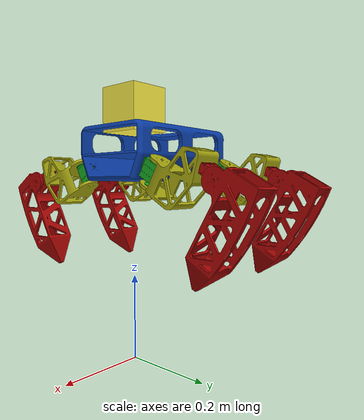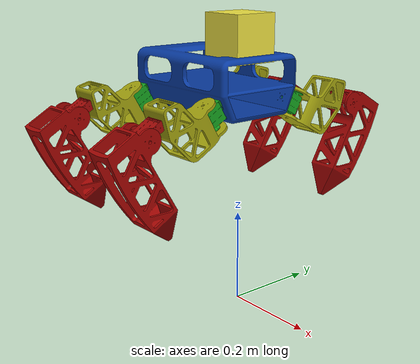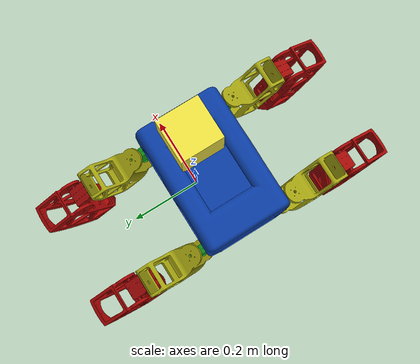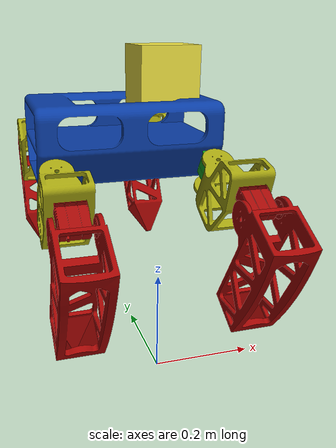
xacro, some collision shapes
<?xml version='1.0'?>

<robot name="insect" xmlns:xacro="http://www.ros.org/wiki/xacro">

<!--xacro parameters-->

<!--macro param-->
<xacro:macro name="default_inertial" params="mass">
   <inertial>
     <mass value="${mass}" />
     <inertia ixx="1.0" ixy="0.0" ixz="0.0" iyy="1.0" iyz="0.0" izz="1.0" />
   </inertial>
 </xacro:macro>
<link name="world"/>

<link name="torso_base">
<collision name="collision">
  <origin xyz="0 0 0" rpy="0 0 0"/>
  <geometry>
    <mesh filename="package://insect_description/meshes/torso_v1.dae"/>
  </geometry>
</collision>
<visual name="visual">
  <origin xyz="0 0 0" rpy="0 0 0"/>
  <geometry>
    <mesh filename="package://insect_description/meshes/torso_v1.dae"/>
  </geometry>
</visual>
<xacro:default_inertial mass="0.8"/>
</link>

 <!--IMU sensor_link-->
  <link name="imu_link">
    <visual>
      <origin rpy="0 0 0" xyz="0 0 0"/>
      <geometry>
        <box size="0.001 0.001 0.001"/> <!--box size="0.001 0.001 0.001"/-->
      </geometry>
    </visual>
    <collision>
      <origin rpy="0 0 0" xyz="0 0 0"/>
      <geometry>
        <box size="0.001 0.001 0.001"/>
      </geometry>
    </collision>
  </link>

  <link name= "l_f_motor">
    <collision name="collision">
      <origin xyz="0 0 0" rpy="0 0 0"/>
        <geometry>
          <mesh filename="package://insect_description/meshes/motor_v1.dae"/>
        </geometry>
      </collision>

      <visual name="visual">
        <origin xyz="0 0 0" rpy="0 0 0"/>
        <geometry>
          <mesh filename="package://insect_description/meshes/motor_v1.dae"/>
        </geometry>
      </visual>
      <xacro:default_inertial mass="0.2"/>
    </link>

    <link name= "r_f_motor">
      <collision name="collision">
        <origin xyz="0 0 0" rpy="0 0 0"/>
          <geometry>
            <mesh filename="package://insect_description/meshes/motor_v1.dae"/>
          </geometry>
        </collision>

        <visual name="visual">
          <origin xyz="0 0 0" rpy="0 0 0"/>
          <geometry>
            <mesh filename="package://insect_description/meshes/motor_v1.dae"/>
          </geometry>
        </visual>
        <xacro:default_inertial mass="0.2"/>
      </link>
      <link name= "l_b_motor">
        <collision name="collision">
          <origin xyz="0 0 0" rpy="0 0 0"/>
            <geometry>
              <mesh filename="package://insect_description/meshes/motor_v1.dae"/>
            </geometry>
          </collision>

          <visual name="visual">
            <origin xyz="0 0 0" rpy="0 0 0"/>
            <geometry>
              <mesh filename="package://insect_description/meshes/motor_v1.dae"/>
            </geometry>
          </visual>
          <xacro:default_inertial mass="0.2"/>
        </link>

        <link name= "r_b_motor">
          <collision name="collision">
            <origin xyz="0 0 0" rpy="0 0 0"/>
              <geometry>
                <mesh filename="package://insect_description/meshes/motor_v1.dae"/>
              </geometry>
            </collision>

            <visual name="visual">
              <origin xyz="0 0 0" rpy="0 0 0"/>
              <geometry>
                <mesh filename="package://insect_description/meshes/motor_v1.dae"/>
              </geometry>
            </visual>
            <xacro:default_inertial mass="0.2"/>
          </link>
          <link name= "l_f_hip">
            <collision name="collision">
              <origin xyz="0 0 0" rpy="0 0 0"/>
                <geometry>
                  <mesh filename="package://insect_description/meshes/hip_v1.dae"/>
                </geometry>
              </collision>

              <visual name="visual">
                <origin xyz="0 0 0" rpy="0 0 0"/>
                <geometry>
                  <mesh filename="package://insect_description/meshes/hip_v1.dae"/>
                </geometry>
              </visual>
              <xacro:default_inertial mass="0.4"/>
            </link>
            <link name= "r_f_hip">
              <collision name="collision">
                <origin xyz="0 0 0" rpy="0 0 0"/>
                  <geometry>
                    <mesh filename="package://insect_description/meshes/hip_v1.dae"/>
                  </geometry>
                </collision>

                <visual name="visual">
                  <origin xyz="0 0 0" rpy="0 0 0"/>
                  <geometry>
                    <mesh filename="package://insect_description/meshes/hip_v1.dae"/>
                  </geometry>
                </visual>
                <xacro:default_inertial mass="0.4"/>
              </link>
              <link name= "l_b_hip">
                <collision name="collision">
                  <origin xyz="0 0 0" rpy="0 0 0"/>
                    <geometry>
                      <mesh filename="package://insect_description/meshes/hip_v1.dae"/>
                    </geometry>
                  </collision>

                  <visual name="visual">
                    <origin xyz="0 0 0" rpy="0 0 0"/>
                    <geometry>
                      <mesh filename="package://insect_description/meshes/hip_v1.dae"/>
                    </geometry>
                  </visual>
                  <xacro:default_inertial mass="0.4"/>
                </link>
                <link name= "r_b_hip">
                  <collision name="collision">
                    <origin xyz="0 0 0" rpy="0 0 0"/>
                      <geometry>
                        <mesh filename="package://insect_description/meshes/hip_v1.dae"/>
                      </geometry>
                    </collision>

                    <visual name="visual">
                      <origin xyz="0 0 0" rpy="0 0 0"/>
                      <geometry>
                        <mesh filename="package://insect_description/meshes/hip_v1.dae"/>
                      </geometry>
                    </visual>
                    <xacro:default_inertial mass="0.4"/>
                  </link>
                  <link name= "l_f_h_motor">
                    <collision name="collision">
                      <origin xyz="0 0 0" rpy="0 0 0"/>
                        <geometry>
                          <mesh filename="package://insect_description/meshes/motor_h_v1.dae"/>
                        </geometry>
                      </collision>

                      <visual name="visual">
                        <origin xyz="0 0 0" rpy="0 0 0"/>
                        <geometry>
                          <mesh filename="package://insect_description/meshes/motor_h_v1.dae"/>
                        </geometry>
                      </visual>
                      <xacro:default_inertial mass="0.2"/>
                    </link>

                    <link name= "r_f_h_motor">
                      <collision name="collision">
                        <origin xyz="0 0 0" rpy="0 0 0"/>
                          <geometry>
                            <mesh filename="package://insect_description/meshes/motor_h_v1.dae"/>
                          </geometry>
                        </collision>

                        <visual name="visual">
                          <origin xyz="0 0 0" rpy="0 0 0"/>
                          <geometry>
                            <mesh filename="package://insect_description/meshes/motor_h_v1.dae"/>
                          </geometry>
                        </visual>
                        <xacro:default_inertial mass="0.2"/>
                      </link>
                      <link name= "l_b_h_motor">
                        <collision name="collision">
                          <origin xyz="0 0 0" rpy="0 0 0"/>
                            <geometry>
                              <mesh filename="package://insect_description/meshes/motor_h_v1.dae"/>
                            </geometry>
                          </collision>

                          <visual name="visual">
                            <origin xyz="0 0 0" rpy="0 0 0"/>
                            <geometry>
                              <mesh filename="package://insect_description/meshes/motor_h_v1.dae"/>
                            </geometry>
                          </visual>
                          <xacro:default_inertial mass="0.2"/>
                        </link>
                        <link name= "r_b_h_motor">
                          <collision name="collision">
                            <origin xyz="0 0 0" rpy="0 0 0"/>
                              <geometry>
                                <mesh filename="package://insect_description/meshes/motor_h_v1.dae"/>
                              </geometry>
                            </collision>

                            <visual name="visual">
                              <origin xyz="0 0 0" rpy="0 0 0"/>
                              <geometry>
                                <mesh filename="package://insect_description/meshes/motor_h_v1.dae"/>
                              </geometry>
                            </visual>
                            <xacro:default_inertial mass="0.2"/>
                          </link>
                          <link name= "l_f_leg">
                            <collision name="collision">
                              <origin xyz="0 0 0" rpy="0 0 0"/>
                                <geometry>
                                  <mesh filename="package://insect_description/meshes/leg_v1.dae"/>
                                </geometry>
                              </collision>

                              <visual name="visual">
                                <origin xyz="0 0 0" rpy="0 0 0"/>
                                <geometry>
                                  <mesh filename="package://insect_description/meshes/leg_v1.dae"/>
                                </geometry>
                              </visual>
                              <xacro:default_inertial mass="0.4"/>
                            </link>
                            <link name= "l_b_leg">
                              <collision name="collision">
                                <origin xyz="0 0 0" rpy="0 0 0"/>
                                  <geometry>
                                    <mesh filename="package://insect_description/meshes/leg_v1.dae"/>
                                  </geometry>
                                </collision>

                                <visual name="visual">
                                  <origin xyz="0 0 0" rpy="0 0 0"/>
                                  <geometry>
                                    <mesh filename="package://insect_description/meshes/leg_v1.dae"/>
                                  </geometry>
                                </visual>
                                <xacro:default_inertial mass="0.4"/>
                              </link>
                              <link name= "r_f_leg">
                                <collision name="collision">
                                  <origin xyz="0 0 0" rpy="0 0 0"/>
                                    <geometry>
                                      <mesh filename="package://insect_description/meshes/leg_v1.dae"/>
                                    </geometry>
                                  </collision>

                                  <visual name="visual">
                                    <origin xyz="0 0 0" rpy="0 0 0"/>
                                    <geometry>
                                      <mesh filename="package://insect_description/meshes/leg_v1.dae"/>
                                    </geometry>
                                  </visual>
                                  <xacro:default_inertial mass="0.4"/>
                                </link>
                                <link name= "r_b_leg">
                                  <collision name="collision">
                                    <origin xyz="0 0 0" rpy="0 0 0"/>
                                      <geometry>
                                        <mesh filename="package://insect_description/meshes/leg_v1.dae"/>
                                      </geometry>
                                    </collision>

                                    <visual name="visual">
                                      <origin xyz="0 0 0" rpy="0 0 0"/>
                                      <geometry>
                                        <mesh filename="package://insect_description/meshes/leg_v1.dae"/>
                                      </geometry>
                                    </visual>
                                    <xacro:default_inertial mass="0.4"/>
                                  </link>
                                  <link name="hokuyo_link">
                                      <collision>
                                          <origin xyz="0 0 0" rpy="0 0 0"/>
                                          <geometry>
                                              <box size="0.1 0.1 0.1"/>
                                          </geometry>
                                      </collision>     <origin xyz="0 0 0" rpy="0 0 0"/>
                                          <geometry>

                                              <mesh filename="package://insect_description/meshes/hokuyo.dae"/>
                                          </geometry>

                                      <visual>
                                          <origin xyz="0 0 0" rpy="0 0 0"/>
                                          <geometry>

                                              <mesh filename="package://insect_description/meshes/hokuyo.dae"/>
                                          </geometry>
                                      </visual>

                                      <inertial>
                                          <mass value="1e-5" />
                                          <origin xyz="0 0 0" rpy="0 0 0"/>
                                          <inertia ixx="1e-6" ixy="0" ixz="0" iyy="1e-6" iyz="0" izz="1e-6" />
                                      </inertial>
                                  </link>

<!-- Joint properties -->
<xacro:property name="joint_lower_limit" value="-${pi/4}"/>
<xacro:property name="joint_upper_limit" value="${pi/4}"/>
<xacro:property name="joint_effort" value="6.0"/>
<xacro:property name="joint_velocity" value="0.524"/>
<xacro:property name="pi" value="3.1415926535897931"/>

<joint name="hokuyo_joint" type="fixed">
    <origin xyz="0 0 0.08" rpy="0 0 0"/>
    <parent link="torso_base"/>
    <child link="hokuyo_link"/>
</joint>

<joint name="world_joint"  type="fixed">
  <origin xyz="0 0 0.50" rpy="0 0 0" />
  <parent link="world"/>
  <child link="torso_base"/>
  <axis xyz="0 0 1" rpy="0 0 0"/>
</joint>
<!--IMU sensor joint-->
<joint name="imu_joint" type="fixed">
  <axis xyz="0.01 0 0.01"/>
  <origin xyz="0 0 0.05"/>
  <parent link="torso_base"/>
  <child link="imu_link"/>
</joint>

<joint name="l_f_motor_joint"  type="fixed">
  <origin xyz="0.048 0.08 -0.08" rpy="0 -${pi/6} -${pi/2}" />
  <parent link="torso_base"/>
  <child link="l_f_motor"/>
  <axis xyz="0 0 1" rpy="0 0 0"/>
</joint>

<joint name="r_f_motor_joint"  type="fixed">
  <origin xyz="0.048 -0.09 -0.08" rpy="0 -${pi/6} ${pi/2}" />
  <parent link="torso_base"/>
  <child link="r_f_motor"/>
  <axis xyz="0 0 1" rpy="0 0 0"/>
</joint>

<joint name="l_b_motor_joint"  type="fixed">
  <origin xyz="-0.2 0.08 -0.08" rpy="0 -${pi/6} -${pi/2}" />
  <parent link="torso_base"/>
  <child link="l_b_motor"/>
  <axis xyz="0 0 1" rpy="0 0 0"/>
</joint>

<joint name="r_b_motor_joint"  type="fixed">
  <origin xyz="-0.2 -0.09 -0.08" rpy="0 -${pi/6} ${pi/2}"/>
  <parent link="torso_base"/>
  <child link="r_b_motor"/>
  <axis xyz="0 0 1" rpy="0 0 0"/>
</joint>

<joint name="l_f_hip_joint"  type="revolute">
  <origin xyz=" -0.04 -0.00005 -0.054" rpy="0 0 0" />
  <parent link="l_f_motor"/>
  <child link="l_f_hip"/>
  <dynamics damping="0.1" friction="0"/>
  <limit lower="${joint_lower_limit}" upper="${joint_upper_limit}" effort="${joint_effort}" velocity="${joint_velocity}"/>
  <safety_controller k_position="100" k_velocity="100" soft_lower_limit="-10.5236" soft_upper_limit="10.5236"/>
  <axis xyz="0 0 1"/>
</joint>

  <joint name="r_f_hip_joint"  type="revolute">
  <origin xyz="-0.04 0.00005 -0.054" rpy="0 0 0" />
  <parent link="r_f_motor"/>
  <child link="r_f_hip"/>
  <dynamics damping="0.1" friction="0"/>
  <limit lower="${joint_lower_limit}" upper="${joint_upper_limit}" effort="${joint_effort}" velocity="${joint_velocity}"/>
  <safety_controller k_position="100" k_velocity="100" soft_lower_limit="-10.5236" soft_upper_limit="10.5236"/>
  <axis xyz="0 0 1" rpy="0 0 0"/>
</joint>

 <joint name="l_b_hip_joint"  type="revolute">
  <origin xyz="-0.04 0.003 -0.054" rpy="0 0 0" />
  <parent link="l_b_motor"/>
  <child link="l_b_hip"/>
  <dynamics damping="0.1" friction="0"/>
  <axis xyz="0 0 1" rpy="0 0 0"/>
  <limit lower="${joint_lower_limit}" upper="${joint_upper_limit}" effort="${joint_effort}" velocity="${joint_velocity}"/>
  <safety_controller k_position="100" k_velocity="100" soft_lower_limit="-10.5236" soft_upper_limit="10.5236"/>
</joint>

 <joint name="r_b_hip_joint"  type="revolute">
  <origin xyz="-0.04 0.003 -0.054" rpy="0 0 0" />
  <parent link="r_b_motor"/>
  <child link="r_b_hip"/>
  <dynamics damping="0.1" friction="0"/>
  <limit lower="${joint_lower_limit}" upper="${joint_upper_limit}" effort="${joint_effort}" velocity="${joint_velocity}"/>
  <safety_controller k_position="100" k_velocity="100" soft_lower_limit="-10.5236" soft_upper_limit="10.5236"/>
  <axis xyz="0 0 1" rpy="0 0 0"/>
</joint>

<joint name="l_f_h_motor_joint" type="fixed">
  <origin xyz="-0.105 -0.003 0.153" rpy="0 0 ${pi}" />
  <parent link="l_f_hip"/>
  <child link="l_f_h_motor"/>
  <axis xyz="0 0 1" rpy="0 0 0"/>
</joint>

<joint name="r_f_h_motor_joint"  type="fixed">
  <origin xyz="-0.105 -0.003 0.153" rpy="0 0 -${pi}"/>
  <parent link="r_f_hip"/>
  <child link="r_f_h_motor"/>
  <axis xyz="0 0 1" rpy="0 0 0"/>
</joint>

<joint name="l_b_h_motor_joint"  type="fixed">
  <origin xyz="-0.105 0.003 0.153" rpy="0 0 ${pi}" />
  <parent link="l_b_hip"/>
  <child link="l_b_h_motor"/>
  <axis xyz="0 0 1" rpy="0 0 0"/>
</joint>

<joint name="r_b_h_motor_joint"  type="fixed">
  <origin xyz="-0.105 -0.003 0.153" rpy="0 0 ${pi}" />
  <parent link="r_b_hip"/>
  <child link="r_b_h_motor"/>
  <axis xyz="0 0 1" rpy="0 0 0"/>
</joint>

<joint name="l_f_leg_joint"  type="revolute">
  <origin xyz="0.075 -0.0002 -0.077" rpy="0 0 ${pi}" />
  <parent link="l_f_h_motor"/>
  <child link="l_f_leg"/>
  <dynamics damping="0.1" friction="0"/>
  <limit lower="${joint_lower_limit}" upper="${joint_upper_limit}" effort="${joint_effort}" velocity="${joint_velocity}"/>
  <safety_controller k_position="100" k_velocity="100" soft_lower_limit="-10.5236" soft_upper_limit="10.5236"/>
  <axis xyz="0 1 0" rpy="0 0 0"/>
</joint>

<joint name="l_b_leg_joint"  type="revolute">
  <origin xyz="0.075 0.0002 -0.077" rpy="0 0 ${pi}" />
  <parent link="l_b_h_motor"/>
  <child link="l_b_leg"/>
  <dynamics damping="0.1" friction="0"/>
  <limit lower="${joint_lower_limit}" upper="${joint_upper_limit}" effort="${joint_effort}" velocity="${joint_velocity}"/>
  <safety_controller k_position="100" k_velocity="100" soft_lower_limit="-10.5236" soft_upper_limit="10.5236"/>
  <axis xyz="0 1 0" rpy="0 0 0"/>
</joint>

<joint name="r_f_leg_joint"  type="revolute">
  <origin xyz="0.075 -0.0002 -0.077" rpy="0 0 ${pi}" />
  <parent link="r_f_h_motor"/>
  <child link="r_f_leg"/>
  <dynamics damping="0.1" friction="0"/>
  <limit lower="${joint_lower_limit}" upper="${joint_upper_limit}" effort="${joint_effort}" velocity="${joint_velocity}"/>
  <safety_controller k_position="100" k_velocity="100" soft_lower_limit="-10.5236" soft_upper_limit="10.5236"/>
  <axis xyz="0 1 0" rpy="0 0 0"/>
</joint>

<joint name="r_b_leg_joint"  type="revolute">
  <origin xyz="0.075 0.0002 -0.077" rpy="0 0 ${pi}" />
  <parent link="r_b_h_motor"/>
  <child link="r_b_leg"/>
  <dynamics damping="0.1" friction="0"/>
  <limit lower="${joint_lower_limit}" upper="${joint_upper_limit}" effort="${joint_effort}" velocity="${joint_velocity}"/>
  <safety_controller k_position="100" k_velocity="100" soft_lower_limit="-10.5236" soft_upper_limit="10.5236"/>
  <axis xyz="0 1 0" rpy="0 0 0"/>
</joint>

<transmission name="l_f_motor_transmission">
  <type>transmission_interface/SimpleTransmission</type>
  <joint name="l_f_motor_joint">
    <hardwareInterface>EffortJointInterface</hardwareInterface>
  </joint>
  <actuator name="l_f_m1">
    <hardwareInterface>EffortJointInterface</hardwareInterface>
    <mechanicalReduction>1</mechanicalReduction>
  </actuator>
</transmission>

  <transmission name="l_b_motor_transmission">
    <type>transmission_interface/SimpleTransmission</type>
    <joint name="l_b_motor_joint">
      <hardwareInterface>EffortJointInterface</hardwareInterface>
    </joint>
    <actuator name="l_b_m1">
      <hardwareInterface>EffortJointInterface</hardwareInterface>
      <mechanicalReduction>1</mechanicalReduction>
    </actuator>
  </transmission>

  <transmission name="r_f_motor_transmission">
    <type>transmission_interface/SimpleTransmission</type>
    <joint name="r_f_motor_joint">
      <hardwareInterface>EffortJointInterface</hardwareInterface>
    </joint>
    <actuator name="r_f_m1">
      <hardwareInterface>EffortJointInterface</hardwareInterface>
      <mechanicalReduction>1</mechanicalReduction>
    </actuator>
  </transmission>

  <transmission name="r_b_motor_transmission">
    <type>transmission_interface/SimpleTransmission</type>
    <joint name="r_b_motor_joint">
      <hardwareInterface>EffortJointInterface</hardwareInterface>
    </joint>
    <actuator name="r_b_m1">
      <hardwareInterface>EffortJointInterface</hardwareInterface>
      <mechanicalReduction>1</mechanicalReduction>
    </actuator>
  </transmission>

  <transmission name="l_f_h_motor_transmission">
    <type>transmission_interface/SimpleTransmission</type>
    <joint name="l_f_h_motor_joint">
      <hardwareInterface>EffortJointInterface</hardwareInterface>
    </joint>
    <actuator name="l_f_h_m2">
      <hardwareInterface>EffortJointInterface</hardwareInterface>
      <mechanicalReduction>1</mechanicalReduction>
    </actuator>
  </transmission>

  <transmission name="l_b_h_motor_transmission">
    <type>transmission_interface/SimpleTransmission</type>
    <joint name="l_b_h_motor_joint">
      <hardwareInterface>EffortJointInterface</hardwareInterface>
    </joint>
    <actuator name="l_b_h_m2">
      <hardwareInterface>EffortJointInterface</hardwareInterface>
      <mechanicalReduction>1</mechanicalReduction>
    </actuator>
  </transmission>

  <transmission name="r_f_h_motor_transmission">
    <type>transmission_interface/SimpleTransmission</type>
    <joint name="r_f_h_motor_joint">
      <hardwareInterface>EffortJointInterface</hardwareInterface>
    </joint>
    <actuator name="r_f_h_m2">
      <hardwareInterface>EffortJointInterface</hardwareInterface>
      <mechanicalReduction>1</mechanicalReduction>
    </actuator>
  </transmission>

  <transmission name="r_b_h_motor_transmission">
    <type>transmission_interface/SimpleTransmission</type>
    <joint name="r_b_h_motor_joint">
      <hardwareInterface>EffortJointInterface</hardwareInterface>
    </joint>
    <actuator name="r_b_h_m2">
      <hardwareInterface>EffortJointInterface</hardwareInterface>
      <mechanicalReduction>1</mechanicalReduction>
    </actuator>
  </transmission>

<!--contact_sensor_torso_base-->
<gazebo reference="torso_base">
  <sensor name="contact_sensor" type="contact">
    <always_on>true</always_on>
    <update_rate>15.0</update_rate>
    <contact>
      <collision>collision</collision>
    </contact>
    <plugin filename="libgazebo_ros_bumper.so" name="gazebo_ros_bumper_controller">
       <bumperTopicName>torso_contact_info</bumperTopicName>
      <frameName>torso_base</frameName>
    </plugin>
  </sensor>
</gazebo>

<!--front_left_leg_contact contact_sensor-->
<gazebo reference="l_f_leg">
  <sensor name="contact_sensor_1" type="contact">
    <always_on>true</always_on>
    <update_rate>15.0</update_rate>
    <contact>
      <collision>collision</collision>
    </contact>
    <plugin filename="libgazebo_ros_bumper.so" name="gazebo_ros_bumper_controller">
      <bumperTopicName>l_f_leg_contact_info</bumperTopicName>
      <frameName>l_f_leg</frameName>
    </plugin>
  </sensor>
</gazebo>
<!--back_left_leg_contact contact_sensor-->
<gazebo reference="l_b_leg">
  <sensor name="contact_sensor_2" type="contact">
    <always_on>true</always_on>
    <update_rate>15.0</update_rate>
    <contact>
      <collision>collision</collision>
    </contact>
    <plugin filename="libgazebo_ros_bumper.so" name="gazebo_ros_bumper_controller">
      <bumperTopicName>l_b_leg_contact_info</bumperTopicName>
      <frameName>l_b_leg</frameName>
    </plugin>
  </sensor>
</gazebo>
<!--frot right_leg_contact contact_sensor-->
<gazebo reference="r_f_leg">
  <sensor name="contact_sensor_3" type="contact">
    <always_on>true</always_on>
    <update_rate>15.0</update_rate>
    <contact>
      <collision>collision</collision>
    </contact>
    <plugin filename="libgazebo_ros_bumper.so" name="gazebo_ros_bumper_controller">
      <bumperTopicName>r_f_leg_contact_info</bumperTopicName>
      <frameName>r_f_leg</frameName>
    </plugin>
  </sensor>
</gazebo>
<!--back right_leg_contact contact_sensor-->
<gazebo reference="r_b_leg">
  <sensor name="contact_sensor_4" type="contact">
    <always_on>true</always_on>
    <update_rate>15.0</update_rate>
    <contact>
      <collision>collision</collision>
    </contact>
    <plugin filename="libgazebo_ros_bumper.so" name="gazebo_ros_bumper_controller">
      <bumperTopicName>r_b_leg_contact_info</bumperTopicName>
      <frameName>r_b_leg</frameName>
    </plugin>
  </sensor>
</gazebo>

<!--plugin for IMU sensor--><!--improve plugin-->
<gazebo>
  <plugin name="imu_controller" filename="libgazebo_ros_imu.so">
    <alwaysOn>true</alwaysOn>
    <updateRate>50.0</updateRate>
    <bodyName>torso_base</bodyName>
    <topicName>imu_data</topicName>
    <gaussianNoise>2.89e-08</gaussianNoise>
    <xyzOffsets>0 0 0</xyzOffsets>
    <rpyOffsets>0 0 0</rpyOffsets>
  </plugin>
</gazebo>

<!--################################################hokuyo_sensor_plugin##################################-->
<gazebo reference="hokuyo_link">
    <sensor type="ray" name="head_hokuyo_sensor">
        <pose>0 0 0 0 0 0</pose>
        <visualize>true</visualize>
        <update_rate>60</update_rate>
        <ray>
            <scan>
            <horizontal>
                <samples>720</samples>
                <resolution>1</resolution>
                <min_angle>-0.785</min_angle>
                <max_angle>0.785</max_angle>
            </horizontal>
            </scan>
            <range>
                <min>0.10</min>
                <max>5.0</max>
                <resolution>0.01</resolution>
            </range>
            <noise>
                <type>gaussian</type>
                <mean>0.0</mean>
                <stddev>0.01</stddev>
            </noise>
        </ray>
        <plugin name="laser" filename="libgazebo_ros_laser.so">
            <topicName>/scan</topicName>
            <frameName>hokuyo_link</frameName>
        </plugin>
    </sensor>
</gazebo>

</robot>
